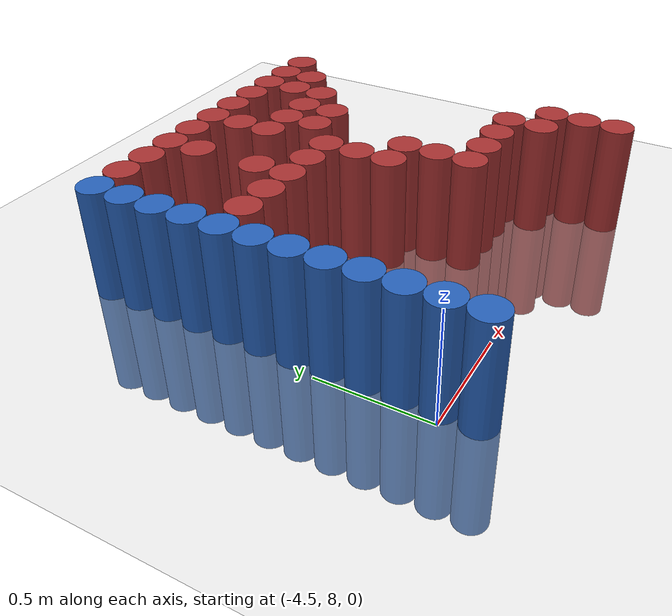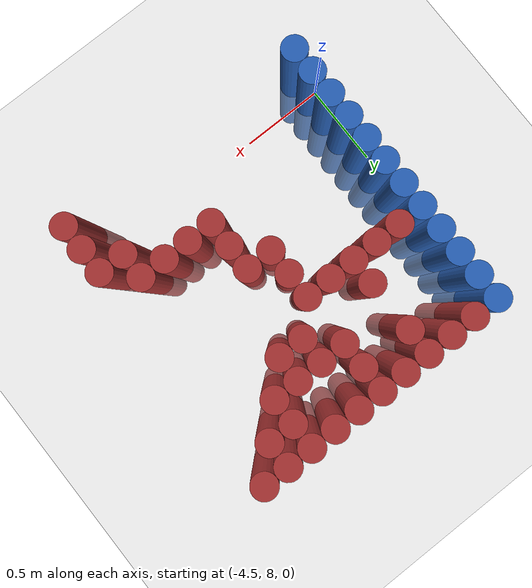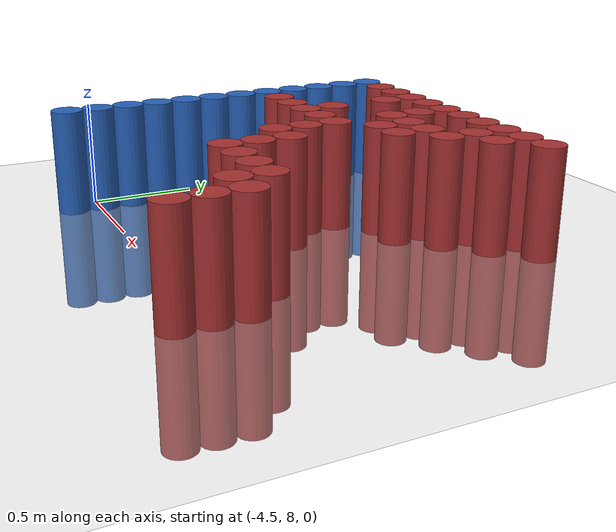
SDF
<sdf version="1.6">
 <world name="default">
  <model name="ground_plane">
   <static>1</static>
   <link name="link">
    <collision name="collision">
     <geometry><plane><normal>0 0 1</normal><size>100 100</size></plane></geometry>
     <surface><friction><ode><mu>100</mu><mu2>50</mu2></ode></friction></surface>
    </collision>
    <visual name="visual">
     <cast_shadows>0</cast_shadows>
     <geometry><plane><normal>0 0 1</normal><size>100 100</size></plane></geometry>
     <material>
      <script><uri>file://media/materials/scripts/gazebo.material</uri><name>Gazebo/Grey</name></script>
     </material>
    </visual>
   </link>
  </model>
  <model name="unit_cylinder_114">
   <static>1</static>
   <pose>-4.425000 7.875000 0.000000 0.000000 0.000000 0.000000</pose>
   <link name="link">
    <inertial>
     <mass>1</mass>
     <inertia><ixx>0.145833</ixx><ixy>0</ixy><ixz>0</ixz><iyy>0.145833</iyy><iyz>0</iyz><izz>0.125</izz></inertia>
    </inertial>
    <collision name="collision">
     <geometry><cylinder><radius>0.075000</radius><length>1</length></cylinder></geometry>
    </collision>
    <visual name="visual">
     <geometry><cylinder><radius>0.075000</radius><length>1</length></cylinder></geometry>
     <material>
      <ambient>0.152000 0.379000 0.720000 1</ambient>
      <diffuse>0.152000 0.379000 0.720000 1</diffuse>
     </material>
     <material>
      <script><name>Gazebo/Grey</name><uri>file://media/materials/scripts/gazebo.material</uri></script>
     </material>
    </visual>
   </link>
  </model>
  <model name="unit_cylinder_115">
   <static>1</static>
   <pose>-4.425000 8.025000 0.000000 0.000000 0.000000 0.000000</pose>
   <link name="link">
    <inertial>
     <mass>1</mass>
     <inertia><ixx>0.145833</ixx><ixy>0</ixy><ixz>0</ixz><iyy>0.145833</iyy><iyz>0</iyz><izz>0.125</izz></inertia>
    </inertial>
    <collision name="collision">
     <geometry><cylinder><radius>0.075000</radius><length>1</length></cylinder></geometry>
    </collision>
    <visual name="visual">
     <geometry><cylinder><radius>0.075000</radius><length>1</length></cylinder></geometry>
     <material>
      <ambient>0.152000 0.379000 0.720000 1</ambient>
      <diffuse>0.152000 0.379000 0.720000 1</diffuse>
     </material>
     <material>
      <script><name>Gazebo/Grey</name><uri>file://media/materials/scripts/gazebo.material</uri></script>
     </material>
    </visual>
   </link>
  </model>
  <model name="unit_cylinder_116">
   <static>1</static>
   <pose>-4.425000 8.175000 0.000000 0.000000 0.000000 0.000000</pose>
   <link name="link">
    <inertial>
     <mass>1</mass>
     <inertia><ixx>0.145833</ixx><ixy>0</ixy><ixz>0</ixz><iyy>0.145833</iyy><iyz>0</iyz><izz>0.125</izz></inertia>
    </inertial>
    <collision name="collision">
     <geometry><cylinder><radius>0.075000</radius><length>1</length></cylinder></geometry>
    </collision>
    <visual name="visual">
     <geometry><cylinder><radius>0.075000</radius><length>1</length></cylinder></geometry>
     <material>
      <ambient>0.152000 0.379000 0.720000 1</ambient>
      <diffuse>0.152000 0.379000 0.720000 1</diffuse>
     </material>
     <material>
      <script><name>Gazebo/Grey</name><uri>file://media/materials/scripts/gazebo.material</uri></script>
     </material>
    </visual>
   </link>
  </model>
  <model name="unit_cylinder_117">
   <static>1</static>
   <pose>-4.425000 8.325000 0.000000 0.000000 0.000000 0.000000</pose>
   <link name="link">
    <inertial>
     <mass>1</mass>
     <inertia><ixx>0.145833</ixx><ixy>0</ixy><ixz>0</ixz><iyy>0.145833</iyy><iyz>0</iyz><izz>0.125</izz></inertia>
    </inertial>
    <collision name="collision">
     <geometry><cylinder><radius>0.075000</radius><length>1</length></cylinder></geometry>
    </collision>
    <visual name="visual">
     <geometry><cylinder><radius>0.075000</radius><length>1</length></cylinder></geometry>
     <material>
      <ambient>0.152000 0.379000 0.720000 1</ambient>
      <diffuse>0.152000 0.379000 0.720000 1</diffuse>
     </material>
     <material>
      <script><name>Gazebo/Grey</name><uri>file://media/materials/scripts/gazebo.material</uri></script>
     </material>
    </visual>
   </link>
  </model>
  <model name="unit_cylinder_118">
   <static>1</static>
   <pose>-4.425000 8.475000 0.000000 0.000000 0.000000 0.000000</pose>
   <link name="link">
    <inertial>
     <mass>1</mass>
     <inertia><ixx>0.145833</ixx><ixy>0</ixy><ixz>0</ixz><iyy>0.145833</iyy><iyz>0</iyz><izz>0.125</izz></inertia>
    </inertial>
    <collision name="collision">
     <geometry><cylinder><radius>0.075000</radius><length>1</length></cylinder></geometry>
    </collision>
    <visual name="visual">
     <geometry><cylinder><radius>0.075000</radius><length>1</length></cylinder></geometry>
     <material>
      <ambient>0.152000 0.379000 0.720000 1</ambient>
      <diffuse>0.152000 0.379000 0.720000 1</diffuse>
     </material>
     <material>
      <script><name>Gazebo/Grey</name><uri>file://media/materials/scripts/gazebo.material</uri></script>
     </material>
    </visual>
   </link>
  </model>
  <model name="unit_cylinder_119">
   <static>1</static>
   <pose>-4.425000 8.625000 0.000000 0.000000 0.000000 0.000000</pose>
   <link name="link">
    <inertial>
     <mass>1</mass>
     <inertia><ixx>0.145833</ixx><ixy>0</ixy><ixz>0</ixz><iyy>0.145833</iyy><iyz>0</iyz><izz>0.125</izz></inertia>
    </inertial>
    <collision name="collision">
     <geometry><cylinder><radius>0.075000</radius><length>1</length></cylinder></geometry>
    </collision>
    <visual name="visual">
     <geometry><cylinder><radius>0.075000</radius><length>1</length></cylinder></geometry>
     <material>
      <ambient>0.152000 0.379000 0.720000 1</ambient>
      <diffuse>0.152000 0.379000 0.720000 1</diffuse>
     </material>
     <material>
      <script><name>Gazebo/Grey</name><uri>file://media/materials/scripts/gazebo.material</uri></script>
     </material>
    </visual>
   </link>
  </model>
  <model name="unit_cylinder_120">
   <static>1</static>
   <pose>-4.425000 8.775000 0.000000 0.000000 0.000000 0.000000</pose>
   <link name="link">
    <inertial>
     <mass>1</mass>
     <inertia><ixx>0.145833</ixx><ixy>0</ixy><ixz>0</ixz><iyy>0.145833</iyy><iyz>0</iyz><izz>0.125</izz></inertia>
    </inertial>
    <collision name="collision">
     <geometry><cylinder><radius>0.075000</radius><length>1</length></cylinder></geometry>
    </collision>
    <visual name="visual">
     <geometry><cylinder><radius>0.075000</radius><length>1</length></cylinder></geometry>
     <material>
      <ambient>0.152000 0.379000 0.720000 1</ambient>
      <diffuse>0.152000 0.379000 0.720000 1</diffuse>
     </material>
     <material>
      <script><name>Gazebo/Grey</name><uri>file://media/materials/scripts/gazebo.material</uri></script>
     </material>
    </visual>
   </link>
  </model>
  <model name="unit_cylinder_121">
   <static>1</static>
   <pose>-4.425000 8.925000 0.000000 0.000000 0.000000 0.000000</pose>
   <link name="link">
    <inertial>
     <mass>1</mass>
     <inertia><ixx>0.145833</ixx><ixy>0</ixy><ixz>0</ixz><iyy>0.145833</iyy><iyz>0</iyz><izz>0.125</izz></inertia>
    </inertial>
    <collision name="collision">
     <geometry><cylinder><radius>0.075000</radius><length>1</length></cylinder></geometry>
    </collision>
    <visual name="visual">
     <geometry><cylinder><radius>0.075000</radius><length>1</length></cylinder></geometry>
     <material>
      <ambient>0.152000 0.379000 0.720000 1</ambient>
      <diffuse>0.152000 0.379000 0.720000 1</diffuse>
     </material>
     <material>
      <script><name>Gazebo/Grey</name><uri>file://media/materials/scripts/gazebo.material</uri></script>
     </material>
    </visual>
   </link>
  </model>
  <model name="unit_cylinder_122">
   <static>1</static>
   <pose>-4.425000 9.075000 0.000000 0.000000 0.000000 0.000000</pose>
   <link name="link">
    <inertial>
     <mass>1</mass>
     <inertia><ixx>0.145833</ixx><ixy>0</ixy><ixz>0</ixz><iyy>0.145833</iyy><iyz>0</iyz><izz>0.125</izz></inertia>
    </inertial>
    <collision name="collision">
     <geometry><cylinder><radius>0.075000</radius><length>1</length></cylinder></geometry>
    </collision>
    <visual name="visual">
     <geometry><cylinder><radius>0.075000</radius><length>1</length></cylinder></geometry>
     <material>
      <ambient>0.152000 0.379000 0.720000 1</ambient>
      <diffuse>0.152000 0.379000 0.720000 1</diffuse>
     </material>
     <material>
      <script><name>Gazebo/Grey</name><uri>file://media/materials/scripts/gazebo.material</uri></script>
     </material>
    </visual>
   </link>
  </model>
  <model name="unit_cylinder_123">
   <static>1</static>
   <pose>-4.425000 9.225000 0.000000 0.000000 0.000000 0.000000</pose>
   <link name="link">
    <inertial>
     <mass>1</mass>
     <inertia><ixx>0.145833</ixx><ixy>0</ixy><ixz>0</ixz><iyy>0.145833</iyy><iyz>0</iyz><izz>0.125</izz></inertia>
    </inertial>
    <collision name="collision">
     <geometry><cylinder><radius>0.075000</radius><length>1</length></cylinder></geometry>
    </collision>
    <visual name="visual">
     <geometry><cylinder><radius>0.075000</radius><length>1</length></cylinder></geometry>
     <material>
      <ambient>0.152000 0.379000 0.720000 1</ambient>
      <diffuse>0.152000 0.379000 0.720000 1</diffuse>
     </material>
     <material>
      <script><name>Gazebo/Grey</name><uri>file://media/materials/scripts/gazebo.material</uri></script>
     </material>
    </visual>
   </link>
  </model>
  <model name="unit_cylinder_124">
   <static>1</static>
   <pose>-4.425000 9.375000 0.000000 0.000000 0.000000 0.000000</pose>
   <link name="link">
    <inertial>
     <mass>1</mass>
     <inertia><ixx>0.145833</ixx><ixy>0</ixy><ixz>0</ixz><iyy>0.145833</iyy><iyz>0</iyz><izz>0.125</izz></inertia>
    </inertial>
    <collision name="collision">
     <geometry><cylinder><radius>0.075000</radius><length>1</length></cylinder></geometry>
    </collision>
    <visual name="visual">
     <geometry><cylinder><radius>0.075000</radius><length>1</length></cylinder></geometry>
     <material>
      <ambient>0.152000 0.379000 0.720000 1</ambient>
      <diffuse>0.152000 0.379000 0.720000 1</diffuse>
     </material>
     <material>
      <script><name>Gazebo/Grey</name><uri>file://media/materials/scripts/gazebo.material</uri></script>
     </material>
    </visual>
   </link>
  </model>
  <model name="unit_cylinder_125">
   <static>1</static>
   <pose>-4.425000 9.525000 0.000000 0.000000 0.000000 0.000000</pose>
   <link name="link">
    <inertial>
     <mass>1</mass>
     <inertia><ixx>0.145833</ixx><ixy>0</ixy><ixz>0</ixz><iyy>0.145833</iyy><iyz>0</iyz><izz>0.125</izz></inertia>
    </inertial>
    <collision name="collision">
     <geometry><cylinder><radius>0.075000</radius><length>1</length></cylinder></geometry>
    </collision>
    <visual name="visual">
     <geometry><cylinder><radius>0.075000</radius><length>1</length></cylinder></geometry>
     <material>
      <ambient>0.152000 0.379000 0.720000 1</ambient>
      <diffuse>0.152000 0.379000 0.720000 1</diffuse>
     </material>
     <material>
      <script><name>Gazebo/Grey</name><uri>file://media/materials/scripts/gazebo.material</uri></script>
     </material>
    </visual>
   </link>
  </model>
  <model name="unit_cylinder_133">
   <static>1</static>
   <pose>-4.275000 8.925000 0.000000 0.000000 0.000000 0.000000</pose>
   <link name="link">
    <inertial>
     <mass>1</mass>
     <inertia><ixx>0.145833</ixx><ixy>0</ixy><ixz>0</ixz><iyy>0.145833</iyy><iyz>0</iyz><izz>0.125</izz></inertia>
    </inertial>
    <collision name="collision">
     <geometry><cylinder><radius>0.075000</radius><length>1</length></cylinder></geometry>
    </collision>
    <visual name="visual">
     <geometry><cylinder><radius>0.075000</radius><length>1</length></cylinder></geometry>
     <material>
      <ambient>0.648000 0.192000 0.192000 1</ambient>
      <diffuse>0.648000 0.192000 0.192000 1</diffuse>
     </material>
     <material>
      <script><name>Gazebo/Grey</name><uri>file://media/materials/scripts/gazebo.material</uri></script>
     </material>
    </visual>
   </link>
  </model>
  <model name="unit_cylinder_134">
   <static>1</static>
   <pose>-4.275000 9.525000 0.000000 0.000000 0.000000 0.000000</pose>
   <link name="link">
    <inertial>
     <mass>1</mass>
     <inertia><ixx>0.145833</ixx><ixy>0</ixy><ixz>0</ixz><iyy>0.145833</iyy><iyz>0</iyz><izz>0.125</izz></inertia>
    </inertial>
    <collision name="collision">
     <geometry><cylinder><radius>0.075000</radius><length>1</length></cylinder></geometry>
    </collision>
    <visual name="visual">
     <geometry><cylinder><radius>0.075000</radius><length>1</length></cylinder></geometry>
     <material>
      <ambient>0.648000 0.192000 0.192000 1</ambient>
      <diffuse>0.648000 0.192000 0.192000 1</diffuse>
     </material>
     <material>
      <script><name>Gazebo/Grey</name><uri>file://media/materials/scripts/gazebo.material</uri></script>
     </material>
    </visual>
   </link>
  </model>
  <model name="unit_cylinder_145">
   <static>1</static>
   <pose>-4.125000 8.925000 0.000000 0.000000 0.000000 0.000000</pose>
   <link name="link">
    <inertial>
     <mass>1</mass>
     <inertia><ixx>0.145833</ixx><ixy>0</ixy><ixz>0</ixz><iyy>0.145833</iyy><iyz>0</iyz><izz>0.125</izz></inertia>
    </inertial>
    <collision name="collision">
     <geometry><cylinder><radius>0.075000</radius><length>1</length></cylinder></geometry>
    </collision>
    <visual name="visual">
     <geometry><cylinder><radius>0.075000</radius><length>1</length></cylinder></geometry>
     <material>
      <ambient>0.648000 0.192000 0.192000 1</ambient>
      <diffuse>0.648000 0.192000 0.192000 1</diffuse>
     </material>
     <material>
      <script><name>Gazebo/Grey</name><uri>file://media/materials/scripts/gazebo.material</uri></script>
     </material>
    </visual>
   </link>
  </model>
  <model name="unit_cylinder_146">
   <static>1</static>
   <pose>-4.125000 9.525000 0.000000 0.000000 0.000000 0.000000</pose>
   <link name="link">
    <inertial>
     <mass>1</mass>
     <inertia><ixx>0.145833</ixx><ixy>0</ixy><ixz>0</ixz><iyy>0.145833</iyy><iyz>0</iyz><izz>0.125</izz></inertia>
    </inertial>
    <collision name="collision">
     <geometry><cylinder><radius>0.075000</radius><length>1</length></cylinder></geometry>
    </collision>
    <visual name="visual">
     <geometry><cylinder><radius>0.075000</radius><length>1</length></cylinder></geometry>
     <material>
      <ambient>0.648000 0.192000 0.192000 1</ambient>
      <diffuse>0.648000 0.192000 0.192000 1</diffuse>
     </material>
     <material>
      <script><name>Gazebo/Grey</name><uri>file://media/materials/scripts/gazebo.material</uri></script>
     </material>
    </visual>
   </link>
  </model>
  <model name="unit_cylinder_152">
   <static>1</static>
   <pose>-3.975000 8.925000 0.000000 0.000000 0.000000 0.000000</pose>
   <link name="link">
    <inertial>
     <mass>1</mass>
     <inertia><ixx>0.145833</ixx><ixy>0</ixy><ixz>0</ixz><iyy>0.145833</iyy><iyz>0</iyz><izz>0.125</izz></inertia>
    </inertial>
    <collision name="collision">
     <geometry><cylinder><radius>0.075000</radius><length>1</length></cylinder></geometry>
    </collision>
    <visual name="visual">
     <geometry><cylinder><radius>0.075000</radius><length>1</length></cylinder></geometry>
     <material>
      <ambient>0.648000 0.192000 0.192000 1</ambient>
      <diffuse>0.648000 0.192000 0.192000 1</diffuse>
     </material>
     <material>
      <script><name>Gazebo/Grey</name><uri>file://media/materials/scripts/gazebo.material</uri></script>
     </material>
    </visual>
   </link>
  </model>
  <model name="unit_cylinder_153">
   <static>1</static>
   <pose>-3.975000 9.075000 0.000000 0.000000 0.000000 0.000000</pose>
   <link name="link">
    <inertial>
     <mass>1</mass>
     <inertia><ixx>0.145833</ixx><ixy>0</ixy><ixz>0</ixz><iyy>0.145833</iyy><iyz>0</iyz><izz>0.125</izz></inertia>
    </inertial>
    <collision name="collision">
     <geometry><cylinder><radius>0.075000</radius><length>1</length></cylinder></geometry>
    </collision>
    <visual name="visual">
     <geometry><cylinder><radius>0.075000</radius><length>1</length></cylinder></geometry>
     <material>
      <ambient>0.648000 0.192000 0.192000 1</ambient>
      <diffuse>0.648000 0.192000 0.192000 1</diffuse>
     </material>
     <material>
      <script><name>Gazebo/Grey</name><uri>file://media/materials/scripts/gazebo.material</uri></script>
     </material>
    </visual>
   </link>
  </model>
  <model name="unit_cylinder_154">
   <static>1</static>
   <pose>-3.975000 9.375000 0.000000 0.000000 0.000000 0.000000</pose>
   <link name="link">
    <inertial>
     <mass>1</mass>
     <inertia><ixx>0.145833</ixx><ixy>0</ixy><ixz>0</ixz><iyy>0.145833</iyy><iyz>0</iyz><izz>0.125</izz></inertia>
    </inertial>
    <collision name="collision">
     <geometry><cylinder><radius>0.075000</radius><length>1</length></cylinder></geometry>
    </collision>
    <visual name="visual">
     <geometry><cylinder><radius>0.075000</radius><length>1</length></cylinder></geometry>
     <material>
      <ambient>0.648000 0.192000 0.192000 1</ambient>
      <diffuse>0.648000 0.192000 0.192000 1</diffuse>
     </material>
     <material>
      <script><name>Gazebo/Grey</name><uri>file://media/materials/scripts/gazebo.material</uri></script>
     </material>
    </visual>
   </link>
  </model>
  <model name="unit_cylinder_155">
   <static>1</static>
   <pose>-3.975000 9.525000 0.000000 0.000000 0.000000 0.000000</pose>
   <link name="link">
    <inertial>
     <mass>1</mass>
     <inertia><ixx>0.145833</ixx><ixy>0</ixy><ixz>0</ixz><iyy>0.145833</iyy><iyz>0</iyz><izz>0.125</izz></inertia>
    </inertial>
    <collision name="collision">
     <geometry><cylinder><radius>0.075000</radius><length>1</length></cylinder></geometry>
    </collision>
    <visual name="visual">
     <geometry><cylinder><radius>0.075000</radius><length>1</length></cylinder></geometry>
     <material>
      <ambient>0.648000 0.192000 0.192000 1</ambient>
      <diffuse>0.648000 0.192000 0.192000 1</diffuse>
     </material>
     <material>
      <script><name>Gazebo/Grey</name><uri>file://media/materials/scripts/gazebo.material</uri></script>
     </material>
    </visual>
   </link>
  </model>
  <model name="unit_cylinder_158">
   <static>1</static>
   <pose>-3.825000 8.925000 0.000000 0.000000 0.000000 0.000000</pose>
   <link name="link">
    <inertial>
     <mass>1</mass>
     <inertia><ixx>0.145833</ixx><ixy>0</ixy><ixz>0</ixz><iyy>0.145833</iyy><iyz>0</iyz><izz>0.125</izz></inertia>
    </inertial>
    <collision name="collision">
     <geometry><cylinder><radius>0.075000</radius><length>1</length></cylinder></geometry>
    </collision>
    <visual name="visual">
     <geometry><cylinder><radius>0.075000</radius><length>1</length></cylinder></geometry>
     <material>
      <ambient>0.648000 0.192000 0.192000 1</ambient>
      <diffuse>0.648000 0.192000 0.192000 1</diffuse>
     </material>
     <material>
      <script><name>Gazebo/Grey</name><uri>file://media/materials/scripts/gazebo.material</uri></script>
     </material>
    </visual>
   </link>
  </model>
  <model name="unit_cylinder_159">
   <static>1</static>
   <pose>-3.825000 9.525000 0.000000 0.000000 0.000000 0.000000</pose>
   <link name="link">
    <inertial>
     <mass>1</mass>
     <inertia><ixx>0.145833</ixx><ixy>0</ixy><ixz>0</ixz><iyy>0.145833</iyy><iyz>0</iyz><izz>0.125</izz></inertia>
    </inertial>
    <collision name="collision">
     <geometry><cylinder><radius>0.075000</radius><length>1</length></cylinder></geometry>
    </collision>
    <visual name="visual">
     <geometry><cylinder><radius>0.075000</radius><length>1</length></cylinder></geometry>
     <material>
      <ambient>0.648000 0.192000 0.192000 1</ambient>
      <diffuse>0.648000 0.192000 0.192000 1</diffuse>
     </material>
     <material>
      <script><name>Gazebo/Grey</name><uri>file://media/materials/scripts/gazebo.material</uri></script>
     </material>
    </visual>
   </link>
  </model>
  <model name="unit_cylinder_163">
   <static>1</static>
   <pose>-3.675000 8.625000 0.000000 0.000000 0.000000 0.000000</pose>
   <link name="link">
    <inertial>
     <mass>1</mass>
     <inertia><ixx>0.145833</ixx><ixy>0</ixy><ixz>0</ixz><iyy>0.145833</iyy><iyz>0</iyz><izz>0.125</izz></inertia>
    </inertial>
    <collision name="collision">
     <geometry><cylinder><radius>0.075000</radius><length>1</length></cylinder></geometry>
    </collision>
    <visual name="visual">
     <geometry><cylinder><radius>0.075000</radius><length>1</length></cylinder></geometry>
     <material>
      <ambient>0.648000 0.192000 0.192000 1</ambient>
      <diffuse>0.648000 0.192000 0.192000 1</diffuse>
     </material>
     <material>
      <script><name>Gazebo/Grey</name><uri>file://media/materials/scripts/gazebo.material</uri></script>
     </material>
    </visual>
   </link>
  </model>
  <model name="unit_cylinder_164">
   <static>1</static>
   <pose>-3.675000 8.775000 0.000000 0.000000 0.000000 0.000000</pose>
   <link name="link">
    <inertial>
     <mass>1</mass>
     <inertia><ixx>0.145833</ixx><ixy>0</ixy><ixz>0</ixz><iyy>0.145833</iyy><iyz>0</iyz><izz>0.125</izz></inertia>
    </inertial>
    <collision name="collision">
     <geometry><cylinder><radius>0.075000</radius><length>1</length></cylinder></geometry>
    </collision>
    <visual name="visual">
     <geometry><cylinder><radius>0.075000</radius><length>1</length></cylinder></geometry>
     <material>
      <ambient>0.648000 0.192000 0.192000 1</ambient>
      <diffuse>0.648000 0.192000 0.192000 1</diffuse>
     </material>
     <material>
      <script><name>Gazebo/Grey</name><uri>file://media/materials/scripts/gazebo.material</uri></script>
     </material>
    </visual>
   </link>
  </model>
  <model name="unit_cylinder_165">
   <static>1</static>
   <pose>-3.675000 8.925000 0.000000 0.000000 0.000000 0.000000</pose>
   <link name="link">
    <inertial>
     <mass>1</mass>
     <inertia><ixx>0.145833</ixx><ixy>0</ixy><ixz>0</ixz><iyy>0.145833</iyy><iyz>0</iyz><izz>0.125</izz></inertia>
    </inertial>
    <collision name="collision">
     <geometry><cylinder><radius>0.075000</radius><length>1</length></cylinder></geometry>
    </collision>
    <visual name="visual">
     <geometry><cylinder><radius>0.075000</radius><length>1</length></cylinder></geometry>
     <material>
      <ambient>0.648000 0.192000 0.192000 1</ambient>
      <diffuse>0.648000 0.192000 0.192000 1</diffuse>
     </material>
     <material>
      <script><name>Gazebo/Grey</name><uri>file://media/materials/scripts/gazebo.material</uri></script>
     </material>
    </visual>
   </link>
  </model>
  <model name="unit_cylinder_166">
   <static>1</static>
   <pose>-3.675000 9.225000 0.000000 0.000000 0.000000 0.000000</pose>
   <link name="link">
    <inertial>
     <mass>1</mass>
     <inertia><ixx>0.145833</ixx><ixy>0</ixy><ixz>0</ixz><iyy>0.145833</iyy><iyz>0</iyz><izz>0.125</izz></inertia>
    </inertial>
    <collision name="collision">
     <geometry><cylinder><radius>0.075000</radius><length>1</length></cylinder></geometry>
    </collision>
    <visual name="visual">
     <geometry><cylinder><radius>0.075000</radius><length>1</length></cylinder></geometry>
     <material>
      <ambient>0.648000 0.192000 0.192000 1</ambient>
      <diffuse>0.648000 0.192000 0.192000 1</diffuse>
     </material>
     <material>
      <script><name>Gazebo/Grey</name><uri>file://media/materials/scripts/gazebo.material</uri></script>
     </material>
    </visual>
   </link>
  </model>
  <model name="unit_cylinder_167">
   <static>1</static>
   <pose>-3.675000 9.375000 0.000000 0.000000 0.000000 0.000000</pose>
   <link name="link">
    <inertial>
     <mass>1</mass>
     <inertia><ixx>0.145833</ixx><ixy>0</ixy><ixz>0</ixz><iyy>0.145833</iyy><iyz>0</iyz><izz>0.125</izz></inertia>
    </inertial>
    <collision name="collision">
     <geometry><cylinder><radius>0.075000</radius><length>1</length></cylinder></geometry>
    </collision>
    <visual name="visual">
     <geometry><cylinder><radius>0.075000</radius><length>1</length></cylinder></geometry>
     <material>
      <ambient>0.648000 0.192000 0.192000 1</ambient>
      <diffuse>0.648000 0.192000 0.192000 1</diffuse>
     </material>
     <material>
      <script><name>Gazebo/Grey</name><uri>file://media/materials/scripts/gazebo.material</uri></script>
     </material>
    </visual>
   </link>
  </model>
  <model name="unit_cylinder_168">
   <static>1</static>
   <pose>-3.675000 9.525000 0.000000 0.000000 0.000000 0.000000</pose>
   <link name="link">
    <inertial>
     <mass>1</mass>
     <inertia><ixx>0.145833</ixx><ixy>0</ixy><ixz>0</ixz><iyy>0.145833</iyy><iyz>0</iyz><izz>0.125</izz></inertia>
    </inertial>
    <collision name="collision">
     <geometry><cylinder><radius>0.075000</radius><length>1</length></cylinder></geometry>
    </collision>
    <visual name="visual">
     <geometry><cylinder><radius>0.075000</radius><length>1</length></cylinder></geometry>
     <material>
      <ambient>0.648000 0.192000 0.192000 1</ambient>
      <diffuse>0.648000 0.192000 0.192000 1</diffuse>
     </material>
     <material>
      <script><name>Gazebo/Grey</name><uri>file://media/materials/scripts/gazebo.material</uri></script>
     </material>
    </visual>
   </link>
  </model>
  <model name="unit_cylinder_171">
   <static>1</static>
   <pose>-3.525000 8.325000 0.000000 0.000000 0.000000 0.000000</pose>
   <link name="link">
    <inertial>
     <mass>1</mass>
     <inertia><ixx>0.145833</ixx><ixy>0</ixy><ixz>0</ixz><iyy>0.145833</iyy><iyz>0</iyz><izz>0.125</izz></inertia>
    </inertial>
    <collision name="collision">
     <geometry><cylinder><radius>0.075000</radius><length>1</length></cylinder></geometry>
    </collision>
    <visual name="visual">
     <geometry><cylinder><radius>0.075000</radius><length>1</length></cylinder></geometry>
     <material>
      <ambient>0.648000 0.192000 0.192000 1</ambient>
      <diffuse>0.648000 0.192000 0.192000 1</diffuse>
     </material>
     <material>
      <script><name>Gazebo/Grey</name><uri>file://media/materials/scripts/gazebo.material</uri></script>
     </material>
    </visual>
   </link>
  </model>
  <model name="unit_cylinder_172">
   <static>1</static>
   <pose>-3.525000 8.475000 0.000000 0.000000 0.000000 0.000000</pose>
   <link name="link">
    <inertial>
     <mass>1</mass>
     <inertia><ixx>0.145833</ixx><ixy>0</ixy><ixz>0</ixz><iyy>0.145833</iyy><iyz>0</iyz><izz>0.125</izz></inertia>
    </inertial>
    <collision name="collision">
     <geometry><cylinder><radius>0.075000</radius><length>1</length></cylinder></geometry>
    </collision>
    <visual name="visual">
     <geometry><cylinder><radius>0.075000</radius><length>1</length></cylinder></geometry>
     <material>
      <ambient>0.648000 0.192000 0.192000 1</ambient>
      <diffuse>0.648000 0.192000 0.192000 1</diffuse>
     </material>
     <material>
      <script><name>Gazebo/Grey</name><uri>file://media/materials/scripts/gazebo.material</uri></script>
     </material>
    </visual>
   </link>
  </model>
  <model name="unit_cylinder_173">
   <static>1</static>
   <pose>-3.525000 8.625000 0.000000 0.000000 0.000000 0.000000</pose>
   <link name="link">
    <inertial>
     <mass>1</mass>
     <inertia><ixx>0.145833</ixx><ixy>0</ixy><ixz>0</ixz><iyy>0.145833</iyy><iyz>0</iyz><izz>0.125</izz></inertia>
    </inertial>
    <collision name="collision">
     <geometry><cylinder><radius>0.075000</radius><length>1</length></cylinder></geometry>
    </collision>
    <visual name="visual">
     <geometry><cylinder><radius>0.075000</radius><length>1</length></cylinder></geometry>
     <material>
      <ambient>0.648000 0.192000 0.192000 1</ambient>
      <diffuse>0.648000 0.192000 0.192000 1</diffuse>
     </material>
     <material>
      <script><name>Gazebo/Grey</name><uri>file://media/materials/scripts/gazebo.material</uri></script>
     </material>
    </visual>
   </link>
  </model>
  <model name="unit_cylinder_174">
   <static>1</static>
   <pose>-3.525000 9.075000 0.000000 0.000000 0.000000 0.000000</pose>
   <link name="link">
    <inertial>
     <mass>1</mass>
     <inertia><ixx>0.145833</ixx><ixy>0</ixy><ixz>0</ixz><iyy>0.145833</iyy><iyz>0</iyz><izz>0.125</izz></inertia>
    </inertial>
    <collision name="collision">
     <geometry><cylinder><radius>0.075000</radius><length>1</length></cylinder></geometry>
    </collision>
    <visual name="visual">
     <geometry><cylinder><radius>0.075000</radius><length>1</length></cylinder></geometry>
     <material>
      <ambient>0.648000 0.192000 0.192000 1</ambient>
      <diffuse>0.648000 0.192000 0.192000 1</diffuse>
     </material>
     <material>
      <script><name>Gazebo/Grey</name><uri>file://media/materials/scripts/gazebo.material</uri></script>
     </material>
    </visual>
   </link>
  </model>
  <model name="unit_cylinder_175">
   <static>1</static>
   <pose>-3.525000 9.225000 0.000000 0.000000 0.000000 0.000000</pose>
   <link name="link">
    <inertial>
     <mass>1</mass>
     <inertia><ixx>0.145833</ixx><ixy>0</ixy><ixz>0</ixz><iyy>0.145833</iyy><iyz>0</iyz><izz>0.125</izz></inertia>
    </inertial>
    <collision name="collision">
     <geometry><cylinder><radius>0.075000</radius><length>1</length></cylinder></geometry>
    </collision>
    <visual name="visual">
     <geometry><cylinder><radius>0.075000</radius><length>1</length></cylinder></geometry>
     <material>
      <ambient>0.648000 0.192000 0.192000 1</ambient>
      <diffuse>0.648000 0.192000 0.192000 1</diffuse>
     </material>
     <material>
      <script><name>Gazebo/Grey</name><uri>file://media/materials/scripts/gazebo.material</uri></script>
     </material>
    </visual>
   </link>
  </model>
  <model name="unit_cylinder_176">
   <static>1</static>
   <pose>-3.525000 9.525000 0.000000 0.000000 0.000000 0.000000</pose>
   <link name="link">
    <inertial>
     <mass>1</mass>
     <inertia><ixx>0.145833</ixx><ixy>0</ixy><ixz>0</ixz><iyy>0.145833</iyy><iyz>0</iyz><izz>0.125</izz></inertia>
    </inertial>
    <collision name="collision">
     <geometry><cylinder><radius>0.075000</radius><length>1</length></cylinder></geometry>
    </collision>
    <visual name="visual">
     <geometry><cylinder><radius>0.075000</radius><length>1</length></cylinder></geometry>
     <material>
      <ambient>0.648000 0.192000 0.192000 1</ambient>
      <diffuse>0.648000 0.192000 0.192000 1</diffuse>
     </material>
     <material>
      <script><name>Gazebo/Grey</name><uri>file://media/materials/scripts/gazebo.material</uri></script>
     </material>
    </visual>
   </link>
  </model>
  <model name="unit_cylinder_178">
   <static>1</static>
   <pose>-3.375000 8.325000 0.000000 0.000000 0.000000 0.000000</pose>
   <link name="link">
    <inertial>
     <mass>1</mass>
     <inertia><ixx>0.145833</ixx><ixy>0</ixy><ixz>0</ixz><iyy>0.145833</iyy><iyz>0</iyz><izz>0.125</izz></inertia>
    </inertial>
    <collision name="collision">
     <geometry><cylinder><radius>0.075000</radius><length>1</length></cylinder></geometry>
    </collision>
    <visual name="visual">
     <geometry><cylinder><radius>0.075000</radius><length>1</length></cylinder></geometry>
     <material>
      <ambient>0.648000 0.192000 0.192000 1</ambient>
      <diffuse>0.648000 0.192000 0.192000 1</diffuse>
     </material>
     <material>
      <script><name>Gazebo/Grey</name><uri>file://media/materials/scripts/gazebo.material</uri></script>
     </material>
    </visual>
   </link>
  </model>
  <model name="unit_cylinder_179">
   <static>1</static>
   <pose>-3.375000 9.075000 0.000000 0.000000 0.000000 0.000000</pose>
   <link name="link">
    <inertial>
     <mass>1</mass>
     <inertia><ixx>0.145833</ixx><ixy>0</ixy><ixz>0</ixz><iyy>0.145833</iyy><iyz>0</iyz><izz>0.125</izz></inertia>
    </inertial>
    <collision name="collision">
     <geometry><cylinder><radius>0.075000</radius><length>1</length></cylinder></geometry>
    </collision>
    <visual name="visual">
     <geometry><cylinder><radius>0.075000</radius><length>1</length></cylinder></geometry>
     <material>
      <ambient>0.648000 0.192000 0.192000 1</ambient>
      <diffuse>0.648000 0.192000 0.192000 1</diffuse>
     </material>
     <material>
      <script><name>Gazebo/Grey</name><uri>file://media/materials/scripts/gazebo.material</uri></script>
     </material>
    </visual>
   </link>
  </model>
  <model name="unit_cylinder_180">
   <static>1</static>
   <pose>-3.375000 9.225000 0.000000 0.000000 0.000000 0.000000</pose>
   <link name="link">
    <inertial>
     <mass>1</mass>
     <inertia><ixx>0.145833</ixx><ixy>0</ixy><ixz>0</ixz><iyy>0.145833</iyy><iyz>0</iyz><izz>0.125</izz></inertia>
    </inertial>
    <collision name="collision">
     <geometry><cylinder><radius>0.075000</radius><length>1</length></cylinder></geometry>
    </collision>
    <visual name="visual">
     <geometry><cylinder><radius>0.075000</radius><length>1</length></cylinder></geometry>
     <material>
      <ambient>0.648000 0.192000 0.192000 1</ambient>
      <diffuse>0.648000 0.192000 0.192000 1</diffuse>
     </material>
     <material>
      <script><name>Gazebo/Grey</name><uri>file://media/materials/scripts/gazebo.material</uri></script>
     </material>
    </visual>
   </link>
  </model>
  <model name="unit_cylinder_181">
   <static>1</static>
   <pose>-3.375000 9.525000 0.000000 0.000000 0.000000 0.000000</pose>
   <link name="link">
    <inertial>
     <mass>1</mass>
     <inertia><ixx>0.145833</ixx><ixy>0</ixy><ixz>0</ixz><iyy>0.145833</iyy><iyz>0</iyz><izz>0.125</izz></inertia>
    </inertial>
    <collision name="collision">
     <geometry><cylinder><radius>0.075000</radius><length>1</length></cylinder></geometry>
    </collision>
    <visual name="visual">
     <geometry><cylinder><radius>0.075000</radius><length>1</length></cylinder></geometry>
     <material>
      <ambient>0.648000 0.192000 0.192000 1</ambient>
      <diffuse>0.648000 0.192000 0.192000 1</diffuse>
     </material>
     <material>
      <script><name>Gazebo/Grey</name><uri>file://media/materials/scripts/gazebo.material</uri></script>
     </material>
    </visual>
   </link>
  </model>
  <model name="unit_cylinder_183">
   <static>1</static>
   <pose>-3.225000 8.325000 0.000000 0.000000 0.000000 0.000000</pose>
   <link name="link">
    <inertial>
     <mass>1</mass>
     <inertia><ixx>0.145833</ixx><ixy>0</ixy><ixz>0</ixz><iyy>0.145833</iyy><iyz>0</iyz><izz>0.125</izz></inertia>
    </inertial>
    <collision name="collision">
     <geometry><cylinder><radius>0.075000</radius><length>1</length></cylinder></geometry>
    </collision>
    <visual name="visual">
     <geometry><cylinder><radius>0.075000</radius><length>1</length></cylinder></geometry>
     <material>
      <ambient>0.648000 0.192000 0.192000 1</ambient>
      <diffuse>0.648000 0.192000 0.192000 1</diffuse>
     </material>
     <material>
      <script><name>Gazebo/Grey</name><uri>file://media/materials/scripts/gazebo.material</uri></script>
     </material>
    </visual>
   </link>
  </model>
  <model name="unit_cylinder_184">
   <static>1</static>
   <pose>-3.225000 9.225000 0.000000 0.000000 0.000000 0.000000</pose>
   <link name="link">
    <inertial>
     <mass>1</mass>
     <inertia><ixx>0.145833</ixx><ixy>0</ixy><ixz>0</ixz><iyy>0.145833</iyy><iyz>0</iyz><izz>0.125</izz></inertia>
    </inertial>
    <collision name="collision">
     <geometry><cylinder><radius>0.075000</radius><length>1</length></cylinder></geometry>
    </collision>
    <visual name="visual">
     <geometry><cylinder><radius>0.075000</radius><length>1</length></cylinder></geometry>
     <material>
      <ambient>0.648000 0.192000 0.192000 1</ambient>
      <diffuse>0.648000 0.192000 0.192000 1</diffuse>
     </material>
     <material>
      <script><name>Gazebo/Grey</name><uri>file://media/materials/scripts/gazebo.material</uri></script>
     </material>
    </visual>
   </link>
  </model>
  <model name="unit_cylinder_185">
   <static>1</static>
   <pose>-3.225000 9.375000 0.000000 0.000000 0.000000 0.000000</pose>
   <link name="link">
    <inertial>
     <mass>1</mass>
     <inertia><ixx>0.145833</ixx><ixy>0</ixy><ixz>0</ixz><iyy>0.145833</iyy><iyz>0</iyz><izz>0.125</izz></inertia>
    </inertial>
    <collision name="collision">
     <geometry><cylinder><radius>0.075000</radius><length>1</length></cylinder></geometry>
    </collision>
    <visual name="visual">
     <geometry><cylinder><radius>0.075000</radius><length>1</length></cylinder></geometry>
     <material>
      <ambient>0.648000 0.192000 0.192000 1</ambient>
      <diffuse>0.648000 0.192000 0.192000 1</diffuse>
     </material>
     <material>
      <script><name>Gazebo/Grey</name><uri>file://media/materials/scripts/gazebo.material</uri></script>
     </material>
    </visual>
   </link>
  </model>
  <model name="unit_cylinder_186">
   <static>1</static>
   <pose>-3.225000 9.525000 0.000000 0.000000 0.000000 0.000000</pose>
   <link name="link">
    <inertial>
     <mass>1</mass>
     <inertia><ixx>0.145833</ixx><ixy>0</ixy><ixz>0</ixz><iyy>0.145833</iyy><iyz>0</iyz><izz>0.125</izz></inertia>
    </inertial>
    <collision name="collision">
     <geometry><cylinder><radius>0.075000</radius><length>1</length></cylinder></geometry>
    </collision>
    <visual name="visual">
     <geometry><cylinder><radius>0.075000</radius><length>1</length></cylinder></geometry>
     <material>
      <ambient>0.648000 0.192000 0.192000 1</ambient>
      <diffuse>0.648000 0.192000 0.192000 1</diffuse>
     </material>
     <material>
      <script><name>Gazebo/Grey</name><uri>file://media/materials/scripts/gazebo.material</uri></script>
     </material>
    </visual>
   </link>
  </model>
  <model name="unit_cylinder_193">
   <static>1</static>
   <pose>-3.075000 8.175000 0.000000 0.000000 0.000000 0.000000</pose>
   <link name="link">
    <inertial>
     <mass>1</mass>
     <inertia><ixx>0.145833</ixx><ixy>0</ixy><ixz>0</ixz><iyy>0.145833</iyy><iyz>0</iyz><izz>0.125</izz></inertia>
    </inertial>
    <collision name="collision">
     <geometry><cylinder><radius>0.075000</radius><length>1</length></cylinder></geometry>
    </collision>
    <visual name="visual">
     <geometry><cylinder><radius>0.075000</radius><length>1</length></cylinder></geometry>
     <material>
      <ambient>0.648000 0.192000 0.192000 1</ambient>
      <diffuse>0.648000 0.192000 0.192000 1</diffuse>
     </material>
     <material>
      <script><name>Gazebo/Grey</name><uri>file://media/materials/scripts/gazebo.material</uri></script>
     </material>
    </visual>
   </link>
  </model>
  <model name="unit_cylinder_194">
   <static>1</static>
   <pose>-3.075000 8.325000 0.000000 0.000000 0.000000 0.000000</pose>
   <link name="link">
    <inertial>
     <mass>1</mass>
     <inertia><ixx>0.145833</ixx><ixy>0</ixy><ixz>0</ixz><iyy>0.145833</iyy><iyz>0</iyz><izz>0.125</izz></inertia>
    </inertial>
    <collision name="collision">
     <geometry><cylinder><radius>0.075000</radius><length>1</length></cylinder></geometry>
    </collision>
    <visual name="visual">
     <geometry><cylinder><radius>0.075000</radius><length>1</length></cylinder></geometry>
     <material>
      <ambient>0.648000 0.192000 0.192000 1</ambient>
      <diffuse>0.648000 0.192000 0.192000 1</diffuse>
     </material>
     <material>
      <script><name>Gazebo/Grey</name><uri>file://media/materials/scripts/gazebo.material</uri></script>
     </material>
    </visual>
   </link>
  </model>
  <model name="unit_cylinder_195">
   <static>1</static>
   <pose>-3.075000 9.375000 0.000000 0.000000 0.000000 0.000000</pose>
   <link name="link">
    <inertial>
     <mass>1</mass>
     <inertia><ixx>0.145833</ixx><ixy>0</ixy><ixz>0</ixz><iyy>0.145833</iyy><iyz>0</iyz><izz>0.125</izz></inertia>
    </inertial>
    <collision name="collision">
     <geometry><cylinder><radius>0.075000</radius><length>1</length></cylinder></geometry>
    </collision>
    <visual name="visual">
     <geometry><cylinder><radius>0.075000</radius><length>1</length></cylinder></geometry>
     <material>
      <ambient>0.648000 0.192000 0.192000 1</ambient>
      <diffuse>0.648000 0.192000 0.192000 1</diffuse>
     </material>
     <material>
      <script><name>Gazebo/Grey</name><uri>file://media/materials/scripts/gazebo.material</uri></script>
     </material>
    </visual>
   </link>
  </model>
  <model name="unit_cylinder_196">
   <static>1</static>
   <pose>-3.075000 9.525000 0.000000 0.000000 0.000000 0.000000</pose>
   <link name="link">
    <inertial>
     <mass>1</mass>
     <inertia><ixx>0.145833</ixx><ixy>0</ixy><ixz>0</ixz><iyy>0.145833</iyy><iyz>0</iyz><izz>0.125</izz></inertia>
    </inertial>
    <collision name="collision">
     <geometry><cylinder><radius>0.075000</radius><length>1</length></cylinder></geometry>
    </collision>
    <visual name="visual">
     <geometry><cylinder><radius>0.075000</radius><length>1</length></cylinder></geometry>
     <material>
      <ambient>0.648000 0.192000 0.192000 1</ambient>
      <diffuse>0.648000 0.192000 0.192000 1</diffuse>
     </material>
     <material>
      <script><name>Gazebo/Grey</name><uri>file://media/materials/scripts/gazebo.material</uri></script>
     </material>
    </visual>
   </link>
  </model>
  <model name="unit_cylinder_207">
   <static>1</static>
   <pose>-2.925000 7.875000 0.000000 0.000000 0.000000 0.000000</pose>
   <link name="link">
    <inertial>
     <mass>1</mass>
     <inertia><ixx>0.145833</ixx><ixy>0</ixy><ixz>0</ixz><iyy>0.145833</iyy><iyz>0</iyz><izz>0.125</izz></inertia>
    </inertial>
    <collision name="collision">
     <geometry><cylinder><radius>0.075000</radius><length>1</length></cylinder></geometry>
    </collision>
    <visual name="visual">
     <geometry><cylinder><radius>0.075000</radius><length>1</length></cylinder></geometry>
     <material>
      <ambient>0.648000 0.192000 0.192000 1</ambient>
      <diffuse>0.648000 0.192000 0.192000 1</diffuse>
     </material>
     <material>
      <script><name>Gazebo/Grey</name><uri>file://media/materials/scripts/gazebo.material</uri></script>
     </material>
    </visual>
   </link>
  </model>
  <model name="unit_cylinder_208">
   <static>1</static>
   <pose>-2.925000 8.025000 0.000000 0.000000 0.000000 0.000000</pose>
   <link name="link">
    <inertial>
     <mass>1</mass>
     <inertia><ixx>0.145833</ixx><ixy>0</ixy><ixz>0</ixz><iyy>0.145833</iyy><iyz>0</iyz><izz>0.125</izz></inertia>
    </inertial>
    <collision name="collision">
     <geometry><cylinder><radius>0.075000</radius><length>1</length></cylinder></geometry>
    </collision>
    <visual name="visual">
     <geometry><cylinder><radius>0.075000</radius><length>1</length></cylinder></geometry>
     <material>
      <ambient>0.648000 0.192000 0.192000 1</ambient>
      <diffuse>0.648000 0.192000 0.192000 1</diffuse>
     </material>
     <material>
      <script><name>Gazebo/Grey</name><uri>file://media/materials/scripts/gazebo.material</uri></script>
     </material>
    </visual>
   </link>
  </model>
  <model name="unit_cylinder_209">
   <static>1</static>
   <pose>-2.925000 8.175000 0.000000 0.000000 0.000000 0.000000</pose>
   <link name="link">
    <inertial>
     <mass>1</mass>
     <inertia><ixx>0.145833</ixx><ixy>0</ixy><ixz>0</ixz><iyy>0.145833</iyy><iyz>0</iyz><izz>0.125</izz></inertia>
    </inertial>
    <collision name="collision">
     <geometry><cylinder><radius>0.075000</radius><length>1</length></cylinder></geometry>
    </collision>
    <visual name="visual">
     <geometry><cylinder><radius>0.075000</radius><length>1</length></cylinder></geometry>
     <material>
      <ambient>0.648000 0.192000 0.192000 1</ambient>
      <diffuse>0.648000 0.192000 0.192000 1</diffuse>
     </material>
     <material>
      <script><name>Gazebo/Grey</name><uri>file://media/materials/scripts/gazebo.material</uri></script>
     </material>
    </visual>
   </link>
  </model>
  <model name="unit_cylinder_210">
   <static>1</static>
   <pose>-2.925000 9.525000 0.000000 0.000000 0.000000 0.000000</pose>
   <link name="link">
    <inertial>
     <mass>1</mass>
     <inertia><ixx>0.145833</ixx><ixy>0</ixy><ixz>0</ixz><iyy>0.145833</iyy><iyz>0</iyz><izz>0.125</izz></inertia>
    </inertial>
    <collision name="collision">
     <geometry><cylinder><radius>0.075000</radius><length>1</length></cylinder></geometry>
    </collision>
    <visual name="visual">
     <geometry><cylinder><radius>0.075000</radius><length>1</length></cylinder></geometry>
     <material>
      <ambient>0.648000 0.192000 0.192000 1</ambient>
      <diffuse>0.648000 0.192000 0.192000 1</diffuse>
     </material>
     <material>
      <script><name>Gazebo/Grey</name><uri>file://media/materials/scripts/gazebo.material</uri></script>
     </material>
    </visual>
   </link>
  </model>
 </world>
</sdf>
